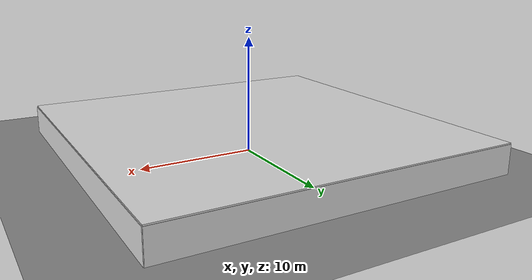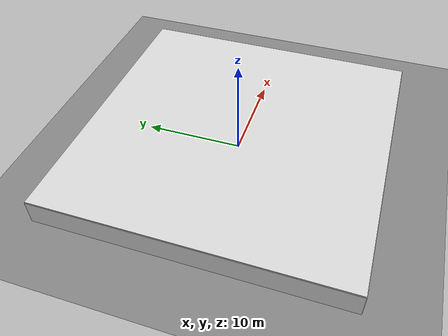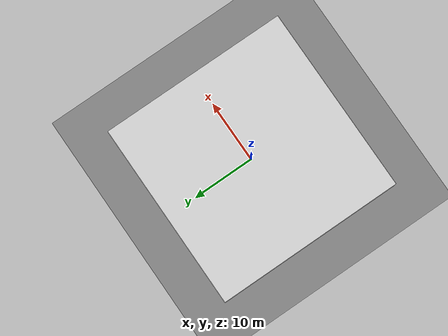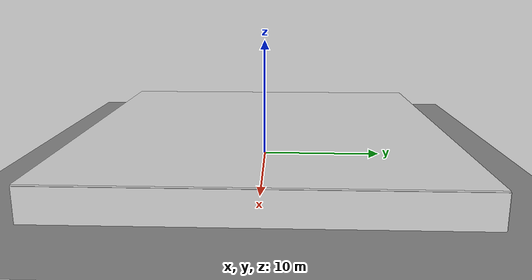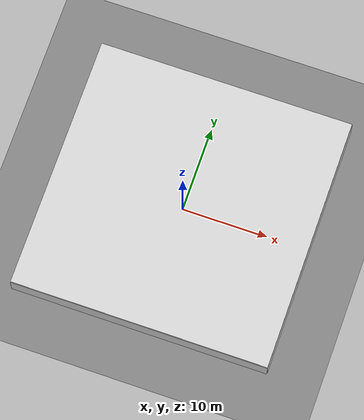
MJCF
<mujoco model="scene">

  <visual>
    <headlight diffuse="0.6 0.6 0.6" ambient="0.3 0.3 0.3" specular="0 0 0"/>
    <rgba haze="0.871 0.616 0.4 0.5"/>
    <global azimuth="-130" elevation="-20"/>
  </visual>

  <asset>
    <texture builtin="gradient" height="100" rgb1="0.9 0.9 0.9" rgb2="0.55 0.25 0.0" type="skybox" width="100"/>
    <include file="../../room/objects/materials.xml"/>
  </asset>

    <worldbody>
        <geom name="floor" friction="1 .1 .1" pos="0 0 0" size="0 0 0.125" type="plane" material="mat_floor" condim="3" conaffinity="1" contype="1" group="2"/>
        <light cutoff="1000" diffuse="1.5 1.5 1.5" dir="-0 0 -1.3" directional="true" exponent="10" pos="0 0 10.3" specular=".1 .1 .1" castshadow="false"/>

        <geom name="wall_negx" type="box" pos="-15.0 0.0 1.25" size="0.05 15.0 1.25" material="mat_wall"/>
        <geom name="wall_posx" type="box" pos=" 15.0 0.0 1.25" size="0.05 15.0 1.25" material="mat_wall"/>
        <geom name="wall_negy" type="box" pos="0.0 -15.0 1.25" size="15.0 0.05 1.25" material="mat_wall"/>
        <geom name="wall_posy" type="box" pos="0.0  15.0 1.25" size="15.0 0.05 1.25" material="mat_wall"/>

        <geom name="ceiling" type="box"
          pos="0 0 2.55"
          size="15.0 15.0 0.05"
          material="mat_wall"
          contype="1" conaffinity="1"
        />

        <!-- SCENARIO: bookshelf_07 -->
        <!-- TARGET_BODY_NAME: bookshelf_target -->
        <!-- LAYOUT: target=bookshelf, distance=far, side=center, difficulty=hard -->

        <!-- TARGET: bookshelf -->
        <body name="bookshelf_target" pos="6.2431 0.3734 0.0" euler="0 0 1.2482">
          <include file="../../room/objects/bookshelf.xml"/>
        </body>

        <!-- OBSTRUCTOR: cardboard_box -->
        <body name="cardboard_box_obstructor1" pos="3.1851 -0.0617 0.0" euler="0 0 1.1318">
          <include file="../../room/objects/cardboard_box.xml"/>
        </body>

        <!-- DISTRACTOR: table -->
        <body name="table_distractor1" pos="4.2494 1.8530 0.0" euler="0 0 -0.3808">
          <include file="../../room/objects/table.xml"/>
        </body>
    </worldbody>
</mujoco>

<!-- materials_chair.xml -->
<mujoco>
  <texture name="tex_wood_chair" type="2d" file="oak_veneer_01_diff_2k.png"/>
  <material name="mat_wood_chair"
            texture="tex_wood_chair"
            texrepeat="1.2 1.2"
            texuniform="true"
            rgba="1 1 1 1"
            specular="0.22"
            shininess="0.35"
            reflectance="0.04"/>
</mujoco>

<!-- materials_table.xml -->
<mujoco>
  <texture name="tex_wood_table" type="2d" file="wood_table_001_diff_2k.png"/>
  <material name="mat_wood_table"
            texture="tex_wood_table"
            texrepeat="1.2 1.2"
            texuniform="true"
            rgba="1 1 1 1"
            specular="0.22"
            shininess="0.35"
            reflectance="0.04"/>
</mujoco>

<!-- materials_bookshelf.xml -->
<mujoco>
  <texture name="tex_bookshelf_wood"
           type="2d"
           file="oak_veneer_01_diff_2k.png"/>

  <material name="mat_wood_bookshelf"
            texture="tex_bookshelf_wood"
            texrepeat="1.2 1.2"
            texuniform="true"
            rgba="1 1 1 1"
            specular="0.22"
            shininess="0.35"
            reflectance="0.04"/>
</mujoco>

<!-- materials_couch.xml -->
<mujoco>
  <texture name="tex_wood_couch" type="2d" file="wood_table_001_diff_2k.png"/>
  <material name="mat_wood_couch"
            texture="tex_wood_couch"
            texrepeat="1.2 1.2"
            texuniform="true"
            rgba="1 1 1 1"
            specular="0.22"
            shininess="0.35"
            reflectance="0.04"/>

  <texture name="tex_fabric" type="2d" file="rough_linen_diff_2k.png"/>
  <material name="mat_fabric"
            texture="tex_fabric"
            texrepeat="1.2 1.2"
            texuniform="true"
            rgba="1 1 1 1"
            specular="0.10"
            shininess="0.08"
            reflectance="0.01"/>
</mujoco>

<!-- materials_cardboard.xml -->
<mujoco>
  <texture name="tex_cardboard" type="2d" file="cardboard.png"/>
  <material name="mat_cardboard"
            texture="tex_cardboard"
            texrepeat="1.2 1.2"
            texuniform="true"
            rgba="1 1 1 1"
            specular="0.10"
            shininess="0.08"
            reflectance="0.01"/>
</mujoco>

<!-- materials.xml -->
<mujoco>
  <material name="mat_wall" rgba="0.85 0.85 0.85 1"/>
  <include file="materials_chair.xml"/>

  <include file="materials_table.xml"/>

  <include file="materials_bookshelf.xml"/>
  <material name="mat_book_red" rgba="0.70 0.18 0.16 1"/>
  <material name="mat_book_blue" rgba="0.16 0.31 0.62 1"/>
  <material name="mat_book_green" rgba="0.22 0.45 0.24 1"/>
  <material name="mat_book_yellow" rgba="0.78 0.66 0.22 1"/>
  <material name="mat_book_dark" rgba="0.20 0.18 0.17 1"/>

  <include file="materials_couch.xml"/>
  <include file="materials_cardboard.xml"/>

  <texture name="tex_metal" type="2d" file="metal.png"/>
  <material name="mat_metal" texture="tex_metal" texrepeat="2 2" reflectance="0.3"/>
  <material name="mat_trash_can_dark_green"
            texture="tex_metal"
            texrepeat="2 2"
            rgba="0.10 0.18 0.12 1"
            specular="0.18"
            shininess="0.20"
            reflectance="0.02"/>

  <texture name="tex_floor" type="2d" builtin="checker" width="512" height="512"
           rgb1="0.55 0.55 0.55" rgb2="0.50 0.50 0.50"/>
  <material name="mat_floor" texture="tex_floor" texrepeat="4 4" reflectance="0.00"/>

</mujoco>

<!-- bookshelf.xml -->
<mujoco>
  <body name="bookshelf" pos="0 0 0">
      <!-- Outer carcass -->
      <geom name="bookshelf_left_panel" type="box"
            pos="-0.285 0 0.54" size="0.025 0.12 0.54"
            material="mat_wood_bookshelf"/>

      <geom name="bookshelf_right_panel" type="box"
            pos="0.285 0 0.54" size="0.025 0.12 0.54"
            material="mat_wood_bookshelf"/>

      <geom name="bookshelf_bottom_panel" type="box"
            pos="0 0 0.035" size="0.285 0.12 0.035"
            material="mat_wood_bookshelf"/>

      <geom name="bookshelf_top_panel" type="box"
            pos="0 0 1.045" size="0.285 0.12 0.035"
            material="mat_wood_bookshelf"/>

      <!-- invisible collision panels to keep objects inside the shelf -->
      <geom name="bookshelf_front_collision" type="box"
            pos="0 -0.130 0.54" size="0.270 0.012 0.50"
            rgba="0 0 0 0"/>
      <geom name="bookshelf_back_collision" type="box"
            pos="0 0.130 0.54" size="0.270 0.012 0.50"
            rgba="0 0 0 0"/>

      <!-- interior shelves -->
      <geom name="bookshelf_shelf_1" type="box"
            pos="0 0.01 0.29" size="0.255 0.10 0.030"
            material="mat_wood_bookshelf"/>
      <geom name="book_s1_a" type="box"
            pos="-0.18 0.00 0.355" size="0.022 0.070 0.065"
            material="mat_book_red"/>
      <geom name="book_s1_b" type="box"
            pos="-0.12 0.00 0.345" size="0.018 0.070 0.055"
            material="mat_book_blue"/>
      <geom name="book_s1_c" type="box"
            pos="-0.07 0.00 0.360" size="0.020 0.070 0.070"
            material="mat_book_green"/>
      <geom name="book_s1_d" type="box"
            pos="0.02 0.00 0.350" size="0.024 0.070 0.060"
            material="mat_book_yellow"/>
      <geom name="book_s1_e" type="box"
            pos="0.08 0.00 0.340" size="0.018 0.070 0.050"
            material="mat_book_dark"/>
      <geom name="book_s1_f" type="box"
            pos="0.18 0.00 0.355" size="0.026 0.070 0.065"
            material="mat_book_blue"/>

      <geom name="bookshelf_shelf_2" type="box"
            pos="0 0.01 0.56" size="0.255 0.10 0.030"
            material="mat_wood_bookshelf"/>
      <geom name="book_s2_a" type="box"
            pos="-0.20 0.00 0.620" size="0.020 0.070 0.050"
            material="mat_book_green"/>
      <geom name="book_s2_b" type="box"
            pos="-0.15 0.00 0.635" size="0.016 0.070 0.065"
            material="mat_book_red"/>
      <geom name="book_s2_c" type="box"
            pos="-0.10 0.00 0.628" size="0.021 0.070 0.058"
            material="mat_book_dark"/>
      <geom name="book_s2_d" type="box"
            pos="0.04 0.00 0.640" size="0.028 0.070 0.070"
            material="mat_book_blue"/>
      <geom name="book_s2_e" type="box"
            pos="0.11 0.00 0.622" size="0.018 0.070 0.052"
            material="mat_book_yellow"/>
      <geom name="book_s2_f" type="box"
            pos="0.17 0.00 0.632" size="0.022 0.070 0.062"
            material="mat_book_red"/>

      <geom name="bookshelf_shelf_3" type="box"
            pos="0 0.01 0.83" size="0.255 0.10 0.030"
            material="mat_wood_bookshelf"/>
      <geom name="book_s3_a" type="box"
            pos="-0.19 0.00 0.895" size="0.018 0.070 0.065"
            material="mat_book_yellow"/>
      <geom name="book_s3_b" type="box"
            pos="-0.14 0.00 0.885" size="0.022 0.070 0.055"
            material="mat_book_blue"/>
      <geom name="book_s3_c" type="box"
            pos="-0.08 0.00 0.900" size="0.020 0.070 0.070"
            material="mat_book_green"/>
      <geom name="book_s3_d" type="box"
            pos="0.00 0.00 0.890" size="0.026 0.070 0.060"
            material="mat_book_red"/>
      <geom name="book_s3_e" type="box"
            pos="0.10 0.00 0.882" size="0.018 0.070 0.052"
            material="mat_book_dark"/>
      <geom name="book_s3_f" type="box"
            pos="0.17 0.00 0.892" size="0.024 0.070 0.062"
            material="mat_book_green"/>

      <!-- front face frame -->
      <geom name="bookshelf_front_left_stile" type="box"
            pos="-0.268 -0.108 0.54" size="0.012 0.010 0.54"
            material="mat_wood_bookshelf"/>

      <geom name="bookshelf_front_right_stile" type="box"
            pos="0.268 -0.108 0.54" size="0.012 0.010 0.54"
            material="mat_wood_bookshelf"/>

      <geom name="bookshelf_front_top_rail" type="box"
            pos="0 -0.108 1.03" size="0.255 0.010 0.012"
            material="mat_wood_bookshelf"/>

      <geom name="bookshelf_front_mid_rail_1" type="box"
            pos="0 -0.108 0.81" size="0.255 0.010 0.010"
            material="mat_wood_bookshelf"/>

      <geom name="bookshelf_front_mid_rail_2" type="box"
            pos="0 -0.108 0.54" size="0.255 0.010 0.010"
            material="mat_wood_bookshelf"/>

      <geom name="bookshelf_front_bottom_rail" type="box"
            pos="0 -0.108 0.05" size="0.255 0.010 0.014"
            material="mat_wood_bookshelf"/>

      <!-- feet -->
      <geom name="bookshelf_left_foot" type="box"
            pos="-0.22 -0.06 0.008" size="0.04 0.04 0.008"
            material="mat_wood_bookshelf"/>

      <geom name="bookshelf_right_foot" type="box"
            pos="0.22 -0.06 0.008" size="0.04 0.04 0.008"
            material="mat_wood_bookshelf"/>
  </body>
</mujoco>

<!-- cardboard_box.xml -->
<mujoco>
  <body>
    <geom name="cardboard_box_base" type="box" pos="0 0 0.015" size="0.20 0.20 0.015" material="mat_cardboard"/>
    <geom name="cardboard_box_wall_front" type="box" pos="0  0.185 0.155" size="0.20 0.015 0.125" material="mat_cardboard"/>
    <geom name="cardboard_box_wall_back" type="box" pos="0 -0.185 0.155" size="0.20 0.015 0.125" material="mat_cardboard"/>
    <geom name="cardboard_box_wall_left" type="box" pos="-0.185 0 0.155" size="0.015 0.20 0.125" material="mat_cardboard"/>
    <geom name="cardboard_box_wall_right" type="box" pos=" 0.185 0 0.155" size="0.015 0.20 0.125" material="mat_cardboard"/>
  </body>
</mujoco>

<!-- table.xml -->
<mujoco>
  <body>
    <!-- tabletop -->
    <geom name="table_top" type="box"
          pos="0 0 0.595" size="0.62 0.42 0.035"
          material="mat_wood_table"/>
    <geom name="table_helper_front" type="box"
          pos="0 0.295 0.275" size="0.450 0.012 0.275"
          rgba="0 0 0 0"/>
    <geom name="table_helper_back" type="box"
          pos="0 -0.295 0.275" size="0.450 0.012 0.275"
          rgba="0 0 0 0"/>
    <geom name="table_helper_left" type="box"
          pos="-0.515 0 0.275" size="0.012 0.245 0.275"
          rgba="0 0 0 0"/>
    <geom name="table_helper_right" type="box"
          pos="0.515 0 0.275" size="0.012 0.245 0.275"
          rgba="0 0 0 0"/>
    <geom name="table_top_bevel_front" type="box"
          pos="0 0.395 0.555" size="0.58 0.012 0.012"
          material="mat_wood_table"/>
    <geom name="table_top_bevel_back" type="box"
          pos="0 -0.395 0.555" size="0.58 0.012 0.012"
          material="mat_wood_table"/>
    <geom name="table_top_bevel_left" type="box"
          pos="-0.595 0 0.555" size="0.012 0.36 0.012"
          material="mat_wood_table"/>
    <geom name="table_top_bevel_right" type="box"
          pos="0.595 0 0.555" size="0.012 0.36 0.012"
          material="mat_wood_table"/>

    <!-- apron -->
    <geom name="table_apron_front" type="box"
          pos="0 0.335 0.515" size="0.53 0.025 0.045"
          material="mat_wood_table"/>
    <geom name="table_apron_back" type="box"
          pos="0 -0.335 0.515" size="0.53 0.025 0.045"
          material="mat_wood_table"/>
    <geom name="table_apron_left" type="box"
          pos="-0.535 0 0.515" size="0.025 0.29 0.045"
          material="mat_wood_table"/>
    <geom name="table_apron_right" type="box"
          pos="0.535 0 0.515" size="0.025 0.29 0.045"
          material="mat_wood_table"/>

    <!-- legs -->
    <geom name="table_leg_fl" type="box"
          pos="0.515 0.295 0.255" size="0.032 0.032 0.255"
          material="mat_wood_table"/>
    <geom name="table_leg_fr" type="box"
          pos="0.515 -0.295 0.255" size="0.032 0.032 0.255"
          material="mat_wood_table"/>
    <geom name="table_leg_rl" type="box"
          pos="-0.515 0.295 0.255" size="0.032 0.032 0.255"
          material="mat_wood_table"/>
    <geom name="table_leg_rr" type="box"
          pos="-0.515 -0.295 0.255" size="0.032 0.032 0.255"
          material="mat_wood_table"/>

    <!-- lower stretchers -->
    <geom name="table_stretcher_left" type="box"
          pos="-0.515 0 0.105" size="0.015 0.295 0.015"
          material="mat_wood_table"/>
    <geom name="table_stretcher_right" type="box"
          pos="0.515 0 0.105" size="0.015 0.295 0.015"
          material="mat_wood_table"/>
    <geom name="table_stretcher_front" type="box"
          pos="0 0.295 0.120" size="0.515 0.015 0.015"
          material="mat_wood_table"/>
    <geom name="table_stretcher_back" type="box"
          pos="0 -0.295 0.120" size="0.515 0.015 0.015"
          material="mat_wood_table"/>

  </body>
</mujoco>
